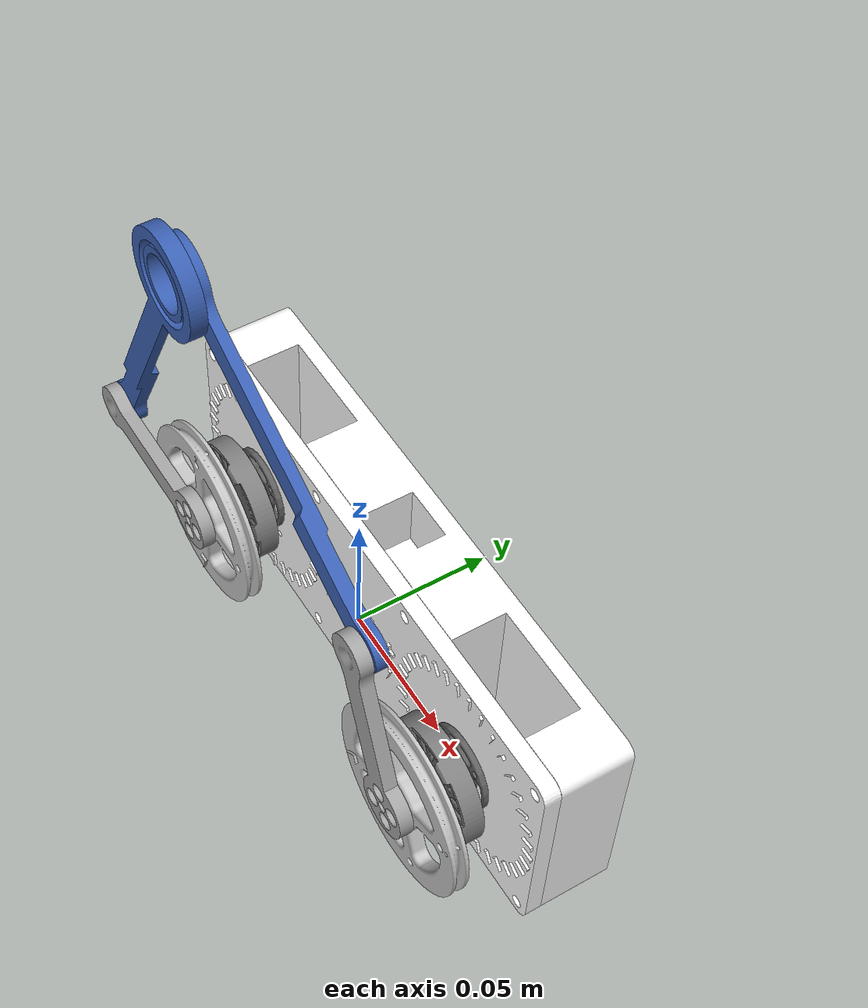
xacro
<?xml version="1.0" ?>
<!-- Generated using onshape-to-robot -->
<!-- Onshape https://cad.onshape.com/documents/dd3abe9e9c2b991f8b4c543e/w/cd0ed4dbbed8ef5fec1acda2/e/cef9e1cc3745d261afba2600 -->
<robot name="fivebar_2dof">
  <link name="world"/>
  <!-- Link base_asm -->
  <link name="base_asm">
    <inertial>
      <origin xyz="-0 0.0131614 -2.75227e-05" rpy="0 0 0"/>
      <mass value="0.530155"/>
      <inertia ixx="0.000332831" ixy="0" ixz="-1.462e-09" iyy="0.0022674" iyz="-2.26825e-07" izz="0.00209532"/>
    </inertial>
    <!-- Part dual_motor_testbed_cover -->
    <visual>
      <origin xyz="0 0.032 -0.000174715" rpy="3.14159 -0 0"/>
      <geometry>
        <mesh filename="package://odri_dual_motor_testbed_description/meshes/assets/dual_motor_testbed_cover.stl"/>
      </geometry>
      <material name="dual_motor_testbed_cover_material">
        <color rgba="1 1 1 1"/>
      </material>
    </visual>
    <collision>
      <origin xyz="0 0.032 -0.000174715" rpy="3.14159 -0 0"/>
      <geometry>
        <mesh filename="package://odri_dual_motor_testbed_description/meshes/assets/dual_motor_testbed_cover.stl"/>
      </geometry>
    </collision>
    <!-- Part part_13 -->
    <visual>
      <origin xyz="0.065 0 -0.000174715" rpy="3.14159 -0 -0"/>
      <geometry>
        <mesh filename="package://odri_dual_motor_testbed_description/meshes/assets/part_13.stl"/>
      </geometry>
      <material name="part_13_material">
        <color rgba="0.376471 0.376471 0.376471 1"/>
      </material>
    </visual>
    <collision>
      <origin xyz="0.065 0 -0.000174715" rpy="3.14159 -0 -0"/>
      <geometry>
        <mesh filename="package://odri_dual_motor_testbed_description/meshes/assets/part_13.stl"/>
      </geometry>
    </collision>
    <!-- Part dual_motor_testbed_base -->
    <visual>
      <origin xyz="0 0.032 -6.31456e-06" rpy="3.14159 -0 -0"/>
      <geometry>
        <mesh filename="package://odri_dual_motor_testbed_description/meshes/assets/dual_motor_testbed_base.stl"/>
      </geometry>
      <material name="dual_motor_testbed_base_material">
        <color rgba="1 1 1 1"/>
      </material>
    </visual>
    <collision>
      <origin xyz="0 0.032 -6.31456e-06" rpy="3.14159 -0 -0"/>
      <geometry>
        <mesh filename="package://odri_dual_motor_testbed_description/meshes/assets/dual_motor_testbed_base.stl"/>
      </geometry>
    </collision>
    <!-- Part part_13_2 -->
    <visual>
      <origin xyz="-0.065 0 -0.000174715" rpy="3.14159 -0 -0"/>
      <geometry>
        <mesh filename="package://odri_dual_motor_testbed_description/meshes/assets/part_13.stl"/>
      </geometry>
      <material name="part_13_2_material">
        <color rgba="0.376471 0.376471 0.376471 1"/>
      </material>
    </visual>
    <collision>
      <origin xyz="-0.065 0 -0.000174715" rpy="3.14159 -0 -0"/>
      <geometry>
        <mesh filename="package://odri_dual_motor_testbed_description/meshes/assets/part_13.stl"/>
      </geometry>
    </collision>
  </link>

  <joint name="base_asm_in_world" type="fixed">
    <parent link="world" />
    <child link="base_asm" />
    <origin xyz="0.0 0.0 0.001" rpy ="0.0 0.0 0.0"/>
  </joint>

  <!-- Link rotor_asm -->
  <link name="rotor_asm">
    <inertial>
      <origin xyz="1.831e-09 7.07212e-05 -0.00543669" rpy="0 0 0"/>
      <mass value="0.0296045"/>
      <inertia ixx="7.98111e-06" ixy="0" ixz="-0" iyy="7.93749e-06" iyz="1.3052e-08" izz="1.11834e-05"/>
    </inertial>
    <!-- Part l1l -->
    <visual>
      <origin xyz="0 -0.04 -0.019" rpy="0 -0 1.5708"/>
      <geometry>
        <mesh filename="package://odri_dual_motor_testbed_description/meshes/assets/l1l.stl"/>
      </geometry>
      <material name="l1l_material">
        <color rgba="0.647059 0.647059 0.647059 1"/>
      </material>
    </visual>
    <collision>
      <origin xyz="0 -0.04 -0.019" rpy="0 -0 1.5708"/>
      <geometry>
        <mesh filename="package://odri_dual_motor_testbed_description/meshes/assets/l1l.stl"/>
      </geometry>
      <surface>
        <contact>
          <collide_bitmask>0x04</collide_bitmask>
        </contact>
      </surface>
    </collision>
    <!-- Part fastener_shcs_m3_6 -->
    <visual>
      <origin xyz="0 0.006 -0.011" rpy="3.14159 0 -0"/>
      <geometry>
        <mesh filename="package://odri_dual_motor_testbed_description/meshes/assets/fastener_shcs_m3_6.stl"/>
      </geometry>
      <material name="fastener_shcs_m3_6_material">
        <color rgba="0.407843 0.427451 0.486275 1"/>
      </material>
    </visual>
    <collision>
      <origin xyz="0 0.006 -0.011" rpy="3.14159 0 -0"/>
      <geometry>
        <mesh filename="package://odri_dual_motor_testbed_description/meshes/assets/fastener_shcs_m3_6.stl"/>
      </geometry>
    </collision>
    <!-- Part motor_antigravity_4004_custom_shaft -->
    <visual>
      <origin xyz="0 0 0.025" rpy="-3.14159 0 -0"/>
      <geometry>
        <mesh filename="package://odri_dual_motor_testbed_description/meshes/assets/motor_antigravity_4004_custom_shaft.stl"/>
      </geometry>
      <material name="motor_antigravity_4004_custom_shaft_material">
        <color rgba="0.568627 0.588235 0.666667 1"/>
      </material>
    </visual>
    <collision>
      <origin xyz="0 0 0.025" rpy="-3.14159 0 -0"/>
      <geometry>
        <mesh filename="package://odri_dual_motor_testbed_description/meshes/assets/motor_antigravity_4004_custom_shaft.stl"/>
      </geometry>
    </collision>
    <!-- Part hand_wheel -->
    <visual>
      <origin xyz="0 0 -0.008" rpy="-1.5708 0 -0"/>
      <geometry>
        <mesh filename="package://odri_dual_motor_testbed_description/meshes/assets/hand_wheel.stl"/>
      </geometry>
      <material name="hand_wheel_material">
        <color rgba="0.768627 0.768627 0.768627 1"/>
      </material>
    </visual>
    <collision>
      <origin xyz="0 0 -0.008" rpy="-1.5708 0 -0"/>
      <geometry>
        <mesh filename="package://odri_dual_motor_testbed_description/meshes/assets/hand_wheel.stl"/>
      </geometry>
    </collision>
    <!-- Part fastener_shcs_m3_6_2 -->
    <visual>
      <origin xyz="0.006 0 -0.011" rpy="-3.14159 0 -0"/>
      <geometry>
        <mesh filename="package://odri_dual_motor_testbed_description/meshes/assets/fastener_shcs_m3_6.stl"/>
      </geometry>
      <material name="fastener_shcs_m3_6_2_material">
        <color rgba="0.407843 0.427451 0.486275 1"/>
      </material>
    </visual>
    <collision>
      <origin xyz="0.006 0 -0.011" rpy="-3.14159 0 -0"/>
      <geometry>
        <mesh filename="package://odri_dual_motor_testbed_description/meshes/assets/fastener_shcs_m3_6.stl"/>
      </geometry>
    </collision>
    <!-- Part fastener_shcs_m3_6_3 -->
    <visual>
      <origin xyz="-0.006 0 -0.011" rpy="-3.14159 0 -0"/>
      <geometry>
        <mesh filename="package://odri_dual_motor_testbed_description/meshes/assets/fastener_shcs_m3_6.stl"/>
      </geometry>
      <material name="fastener_shcs_m3_6_3_material">
        <color rgba="0.407843 0.427451 0.486275 1"/>
      </material>
    </visual>
    <collision>
      <origin xyz="-0.006 0 -0.011" rpy="-3.14159 0 -0"/>
      <geometry>
        <mesh filename="package://odri_dual_motor_testbed_description/meshes/assets/fastener_shcs_m3_6.stl"/>
      </geometry>
    </collision>
    <!-- Part fastener_shcs_m3_6_4 -->
    <visual>
      <origin xyz="0 -0.006 -0.011" rpy="-3.14159 0 -0"/>
      <geometry>
        <mesh filename="package://odri_dual_motor_testbed_description/meshes/assets/fastener_shcs_m3_6.stl"/>
      </geometry>
      <material name="fastener_shcs_m3_6_4_material">
        <color rgba="0.407843 0.427451 0.486275 1"/>
      </material>
    </visual>
    <collision>
      <origin xyz="0 -0.006 -0.011" rpy="-3.14159 0 -0"/>
      <geometry>
        <mesh filename="package://odri_dual_motor_testbed_description/meshes/assets/fastener_shcs_m3_6.stl"/>
      </geometry>
    </collision>
    <!-- Part motor_antigravity_4004_rotor -->
    <visual>
      <origin xyz="0 0 -0.008" rpy="-1.5708 -0 0.785398"/>
      <geometry>
        <mesh filename="package://odri_dual_motor_testbed_description/meshes/assets/motor_antigravity_4004_rotor.stl"/>
      </geometry>
      <material name="motor_antigravity_4004_rotor_material">
        <color rgba="0.501961 0.501961 0.501961 1"/>
      </material>
    </visual>
    <collision>
      <origin xyz="0 0 -0.008" rpy="-1.5708 -0 0.785398"/>
      <geometry>
        <mesh filename="package://odri_dual_motor_testbed_description/meshes/assets/motor_antigravity_4004_rotor.stl"/>
      </geometry>
    </collision>
  </link>
  <!-- Link l2r -->
  <link name="l2r">
    <inertial>
      <origin xyz="0 0 0" rpy="0 0 0"/>
      <mass value="0.01"/>
      <inertia ixx="1e-05" ixy="0" ixz="0" iyy="1e-05" iyz="0" izz="1e-05"/>
    </inertial>
    <!-- Part l2r -->
    <visual>
      <origin xyz="0 0.06 0.005" rpy="-3.14159 0 -0"/>
      <geometry>
        <mesh filename="package://odri_dual_motor_testbed_description/meshes/assets/l2r.stl"/>
      </geometry>
      <material name="l2r_material">
        <color rgba="0.231373 0.380392 0.705882 1"/>
      </material>
    </visual>
    <collision>
      <origin xyz="0 0.06 0.005" rpy="-3.14159 0 -0"/>
      <geometry>
        <mesh filename="package://odri_dual_motor_testbed_description/meshes/assets/l2r.stl"/>
      </geometry>
      <surface>
        <contact>
          <collide_bitmask>0x01</collide_bitmask>
        </contact>
      </surface>
    </collision>
  </link>
  <!-- Frame closing_ee_1 (dummy link + fixed joint) -->
  <link name="closing_ee_1">
    <origin xyz="0 0 0" rpy="0 -0 0"/>
    <inertial>
      <origin xyz="0 0 0" rpy="0 0 0"/>
      <mass value="1e-9"/>
      <inertia ixx="0" ixy="0" ixz="0" iyy="0" iyz="0" izz="0"/>
    </inertial>
  </link>
  <joint name="closing_ee_1_frame" type="fixed">
    <origin xyz="0 -0.125 -0.002" rpy="-3.14159 0 -0"/>
    <parent link="l2r"/>
    <child link="closing_ee_1"/>
    <axis xyz="0 0 0"/>
  </joint>
  <!-- Joint from rotor_asm to l2r -->
  <joint name="elbowL" type="revolute">
    <origin xyz="-0.06 0 -0.014" rpy="3.14159 0 -2.6769"/>
    <parent link="rotor_asm"/>
    <child link="l2r"/>
    <axis xyz="0 0 1"/>
    <limit effort="1" velocity="1" lower="-3.141592653589793" upper="3.141592653589793"/>
  </joint>
  <!-- Joint from base_asm to rotor_asm -->
  <joint name="motorL" type="revolute">
    <origin xyz="-0.065 -0.0112 -0.000174715" rpy="-1.5708 -0 -0"/>
    <parent link="base_asm"/>
    <child link="rotor_asm"/>
    <axis xyz="0 0 1"/>
    <limit effort="1" velocity="1" lower="-3.141592653589793" upper="3.141592653589793"/>
  </joint>
  <!-- Link rotor_asm_2 -->
  <link name="rotor_asm_2">
    <inertial>
      <origin xyz="5.00087e-05 5.00061e-05 -0.00543669" rpy="0 0 0"/>
      <mass value="0.0296045"/>
      <inertia ixx="7.9593e-06" ixy="-2.1811e-08" ixz="9.229e-09" iyy="7.9593e-06" iyz="9.229e-09" izz="1.11834e-05"/>
    </inertial>
    <!-- Part l1r -->
    <visual>
      <origin xyz="-0 -0 -0.019" rpy="-0 0 0.785398"/>
      <geometry>
        <mesh filename="package://odri_dual_motor_testbed_description/meshes/assets/l1r.stl"/>
      </geometry>
      <material name="l1r_material">
        <color rgba="0.647059 0.647059 0.647059 1"/>
      </material>
    </visual>
    <collision>
      <origin xyz="-0 -0 -0.019" rpy="-0 0 0.785398"/>
      <geometry>
        <mesh filename="package://odri_dual_motor_testbed_description/meshes/assets/l1r.stl"/>
      </geometry>
      <surface>
        <contact>
          <collide_bitmask>0x08</collide_bitmask>
        </contact>
      </surface>

    </collision>
    <!-- Part fastener_shcs_m3_6_5 -->
    <visual>
      <origin xyz="0.00424264 0.00424264 -0.011" rpy="3.14159 0 -0.785398"/>
      <geometry>
        <mesh filename="package://odri_dual_motor_testbed_description/meshes/assets/fastener_shcs_m3_6.stl"/>
      </geometry>
      <material name="fastener_shcs_m3_6_5_material">
        <color rgba="0.407843 0.427451 0.486275 1"/>
      </material>
    </visual>
    <collision>
      <origin xyz="0.00424264 0.00424264 -0.011" rpy="3.14159 0 -0.785398"/>
      <geometry>
        <mesh filename="package://odri_dual_motor_testbed_description/meshes/assets/fastener_shcs_m3_6.stl"/>
      </geometry>
    </collision>
    <!-- Part motor_antigravity_4004_custom_shaft_2 -->
    <visual>
      <origin xyz="-0 -0 0.025" rpy="-3.14159 0 -0.785398"/>
      <geometry>
        <mesh filename="package://odri_dual_motor_testbed_description/meshes/assets/motor_antigravity_4004_custom_shaft.stl"/>
      </geometry>
      <material name="motor_antigravity_4004_custom_shaft_2_material">
        <color rgba="0.568627 0.588235 0.666667 1"/>
      </material>
    </visual>
    <collision>
      <origin xyz="-0 -0 0.025" rpy="-3.14159 0 -0.785398"/>
      <geometry>
        <mesh filename="package://odri_dual_motor_testbed_description/meshes/assets/motor_antigravity_4004_custom_shaft.stl"/>
      </geometry>
    </collision>
    <!-- Part hand_wheel_2 -->
    <visual>
      <origin xyz="-0 -0 -0.008" rpy="-1.5708 -0 -0.785398"/>
      <geometry>
        <mesh filename="package://odri_dual_motor_testbed_description/meshes/assets/hand_wheel.stl"/>
      </geometry>
      <material name="hand_wheel_2_material">
        <color rgba="0.768627 0.768627 0.768627 1"/>
      </material>
    </visual>
    <collision>
      <origin xyz="-0 -0 -0.008" rpy="-1.5708 -0 -0.785398"/>
      <geometry>
        <mesh filename="package://odri_dual_motor_testbed_description/meshes/assets/hand_wheel.stl"/>
      </geometry>
    </collision>
    <!-- Part fastener_shcs_m3_6_6 -->
    <visual>
      <origin xyz="0.00424264 -0.00424264 -0.011" rpy="-3.14159 0 -0.785398"/>
      <geometry>
        <mesh filename="package://odri_dual_motor_testbed_description/meshes/assets/fastener_shcs_m3_6.stl"/>
      </geometry>
      <material name="fastener_shcs_m3_6_6_material">
        <color rgba="0.407843 0.427451 0.486275 1"/>
      </material>
    </visual>
    <collision>
      <origin xyz="0.00424264 -0.00424264 -0.011" rpy="-3.14159 0 -0.785398"/>
      <geometry>
        <mesh filename="package://odri_dual_motor_testbed_description/meshes/assets/fastener_shcs_m3_6.stl"/>
      </geometry>
    </collision>
    <!-- Part fastener_shcs_m3_6_7 -->
    <visual>
      <origin xyz="-0.00424264 0.00424264 -0.011" rpy="-3.14159 0 -0.785398"/>
      <geometry>
        <mesh filename="package://odri_dual_motor_testbed_description/meshes/assets/fastener_shcs_m3_6.stl"/>
      </geometry>
      <material name="fastener_shcs_m3_6_7_material">
        <color rgba="0.407843 0.427451 0.486275 1"/>
      </material>
    </visual>
    <collision>
      <origin xyz="-0.00424264 0.00424264 -0.011" rpy="-3.14159 0 -0.785398"/>
      <geometry>
        <mesh filename="package://odri_dual_motor_testbed_description/meshes/assets/fastener_shcs_m3_6.stl"/>
      </geometry>
    </collision>
    <!-- Part fastener_shcs_m3_6_8 -->
    <visual>
      <origin xyz="-0.00424264 -0.00424264 -0.011" rpy="-3.14159 0 -0.785398"/>
      <geometry>
        <mesh filename="package://odri_dual_motor_testbed_description/meshes/assets/fastener_shcs_m3_6.stl"/>
      </geometry>
      <material name="fastener_shcs_m3_6_8_material">
        <color rgba="0.407843 0.427451 0.486275 1"/>
      </material>
    </visual>
    <collision>
      <origin xyz="-0.00424264 -0.00424264 -0.011" rpy="-3.14159 0 -0.785398"/>
      <geometry>
        <mesh filename="package://odri_dual_motor_testbed_description/meshes/assets/fastener_shcs_m3_6.stl"/>
      </geometry>
    </collision>
    <!-- Part motor_antigravity_4004_rotor_2 -->
    <visual>
      <origin xyz="-0 -0 -0.008" rpy="-1.5708 0 -0"/>
      <geometry>
        <mesh filename="package://odri_dual_motor_testbed_description/meshes/assets/motor_antigravity_4004_rotor.stl"/>
      </geometry>
      <material name="motor_antigravity_4004_rotor_2_material">
        <color rgba="0.501961 0.501961 0.501961 1"/>
      </material>
    </visual>
    <collision>
      <origin xyz="-0 -0 -0.008" rpy="-1.5708 0 -0"/>
      <geometry>
        <mesh filename="package://odri_dual_motor_testbed_description/meshes/assets/motor_antigravity_4004_rotor.stl"/>
      </geometry>
    </collision>
  </link>
  <!-- Link l2l -->
  <link name="l2l">
    <inertial>
      <origin xyz="0 0 0" rpy="0 0 0"/>
      <mass value="0.01"/>
      <inertia ixx="1e-05" ixy="0" ixz="0" iyy="1e-05" iyz="0" izz="1e-05"/>
    </inertial>
    <!-- Part l2l -->
    <visual>
      <origin xyz="-0.04 0.06 0.005" rpy="-3.14159 -0 -0"/>
      <geometry>
        <mesh filename="package://odri_dual_motor_testbed_description/meshes/assets/l2l.stl"/>
      </geometry>
      <material name="l2l_material">
        <color rgba="0.231373 0.380392 0.705882 1"/>
      </material>
    </visual>
    <collision>
      <origin xyz="-0.04 0.06 0.005" rpy="-3.14159 -0 -0"/>
      <geometry>
        <mesh filename="package://odri_dual_motor_testbed_description/meshes/assets/l2l.stl"/>
      </geometry>

      <surface>
        <contact>
          <collide_bitmask>0x02</collide_bitmask>
        </contact>
      </surface>

    </collision>
  </link>
  <!-- Frame closing_ee_2 (dummy link + fixed joint) -->
  <link name="closing_ee_2">
    <origin xyz="0 0 0" rpy="0 -0 0"/>
    <inertial>
      <origin xyz="0 0 0" rpy="0 0 0"/>
      <mass value="1e-9"/>
      <inertia ixx="0" ixy="0" ixz="0" iyy="0" iyz="0" izz="0"/>
    </inertial>
  </link>
  <joint name="closing_ee_2_frame" type="fixed">
    <origin xyz="0 -0.125 -0.0015" rpy="-3.14159 0 -1.5708"/>
    <parent link="l2l"/>
    <child link="closing_ee_2"/>
    <axis xyz="0 0 0"/>
  </joint>
  <!-- Joint from rotor_asm_2 to l2l -->
  <joint name="elbowR" type="revolute">
    <origin xyz="-0.0424264 0.0424264 -0.014" rpy="-3.14159 0 0.0589597"/>
    <parent link="rotor_asm_2"/>
    <child link="l2l"/>
    <axis xyz="0 0 1"/>
    <limit effort="1" velocity="1" lower="-3.141592653589793" upper="3.141592653589793"/>
  </joint>
  <!-- Joint from base_asm to rotor_asm_2 -->
  <joint name="motorR" type="revolute">
    <origin xyz="0.065 -0.0112 -0.000174715" rpy="1.5708 1.16507 -3.14159"/>
    <parent link="base_asm"/>
    <child link="rotor_asm_2"/>
    <axis xyz="0 0 1"/>
    <limit effort="1" velocity="1" lower="-3.141592653589793" upper="3.141592653589793"/>
  </joint>

  <ros2_control name="GazeboOdriSimSystem" type="system">
    <hardware>
      <plugin>odri_gz_ros2_control/GazeboOdriSimSystem</plugin>
    </hardware>
    <joint name="motorL">
      <command_interface name="position" />
      <command_interface name="velocity" />
      <command_interface name="effort" />
      <command_interface name="gain_kp" />
      <command_interface name="gain_kd" />
      <state_interface name="velocity" />
      <state_interface name="position" />
      <state_interface name="effort" />
    </joint>
    <joint name="motorR">
      <command_interface name="position" />
      <command_interface name="velocity" />
      <command_interface name="effort" />
      <command_interface name="gain_kp" />
      <command_interface name="gain_kd" />
      <state_interface name="velocity" />
      <state_interface name="position" />
      <state_interface name="effort" />
    </joint>
  </ros2_control>

  <gazebo>
    <plugin filename="odri_gz_ros2_control-system" name="odri_gz_ros2_control::GazeboOdriSimROS2ControlPlugin">
      <parameters>$(find odri_dual_motor_testbed_gazebo)/config/forward_command_controller.yaml</parameters>
    </plugin>
  </gazebo>

  <!--      Gazebo Harmonic (gz-sim8) system plugin for five-bar loop closure. -->
  <!--      A penalty-based spring-damper drives closing_ee_1 and closing_ee_2 -->
  <!--      together each simulation step. -->
  <!--           name="odri_gz::FiveBarClosurePlugin"> -->
  <!--          they survive URDF→SDF conversion as actual link entities). -->
  <!--          closing_ee_1/2 become SDF frames and do NOT exist in the ECM. -\-> -->
  <!--          frame.  Values come from the closing_ee_*_frame joint xyz. -\-> -->
  <!--          l2r/l2l have mass 1e-9 kg: kp=50000 with 1 mm error → 50 N → -->
  <!--          a ≈ 5×10¹⁰ m/s² → ODE AABB overflow in one step. -\-> -->
  <!--          joint configuration does not satisfy loop closure. -\-> -->

</robot>
